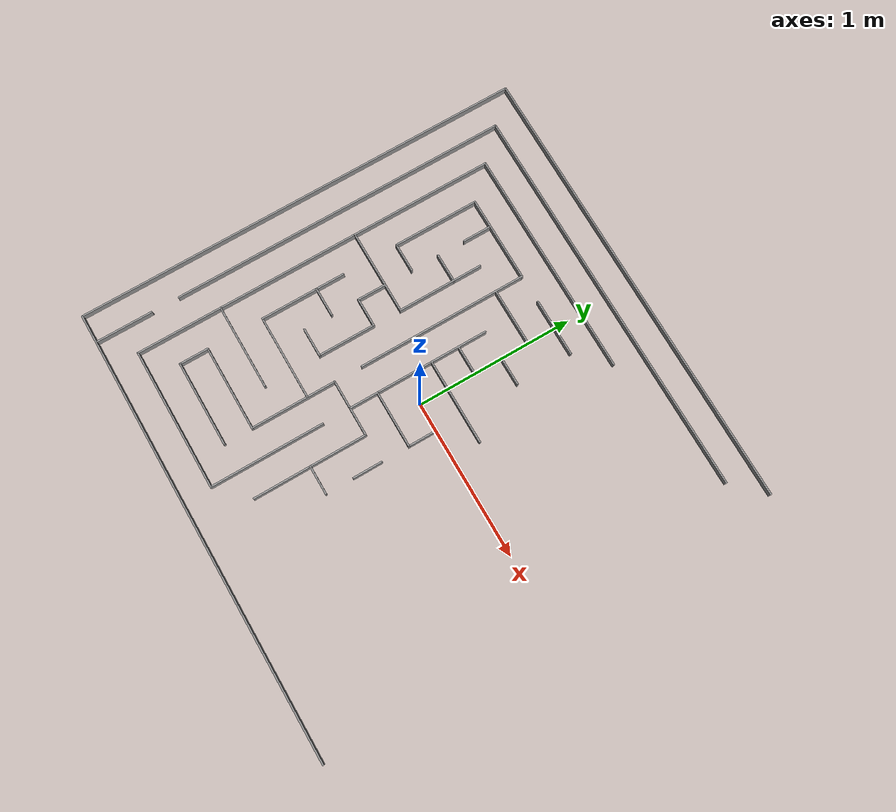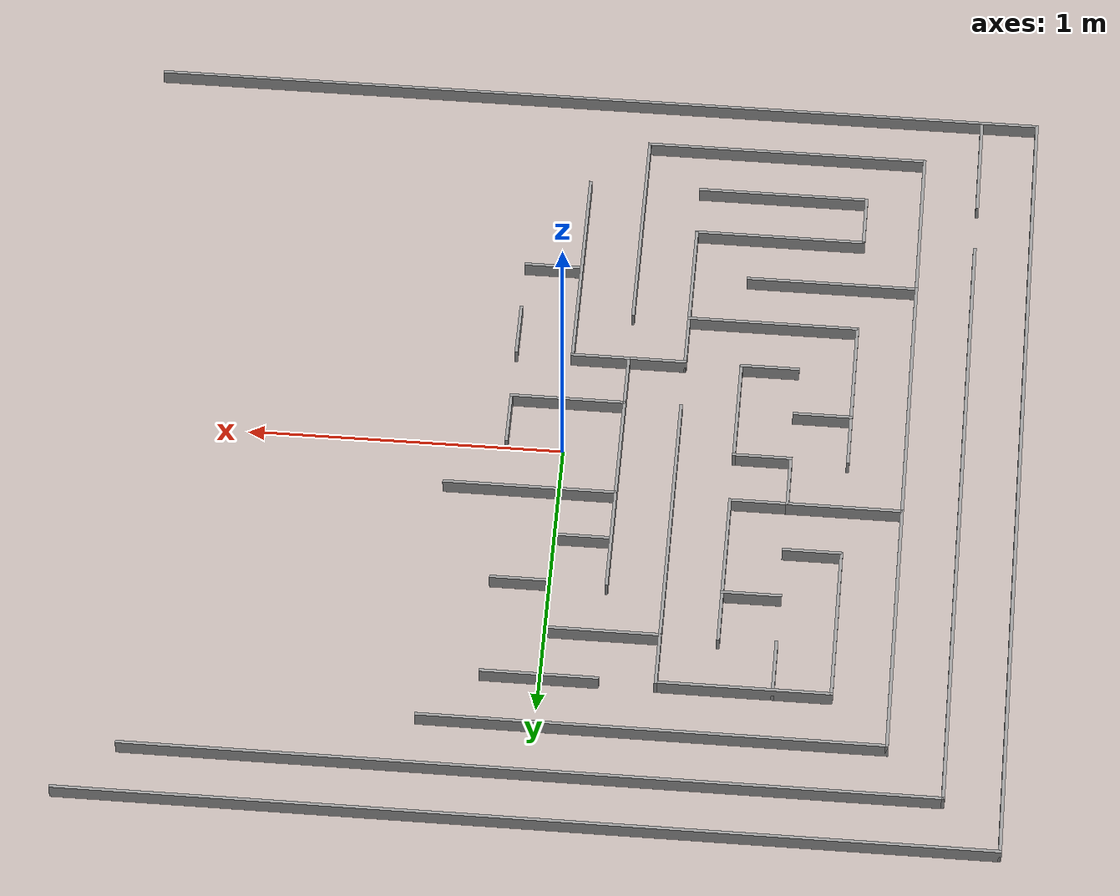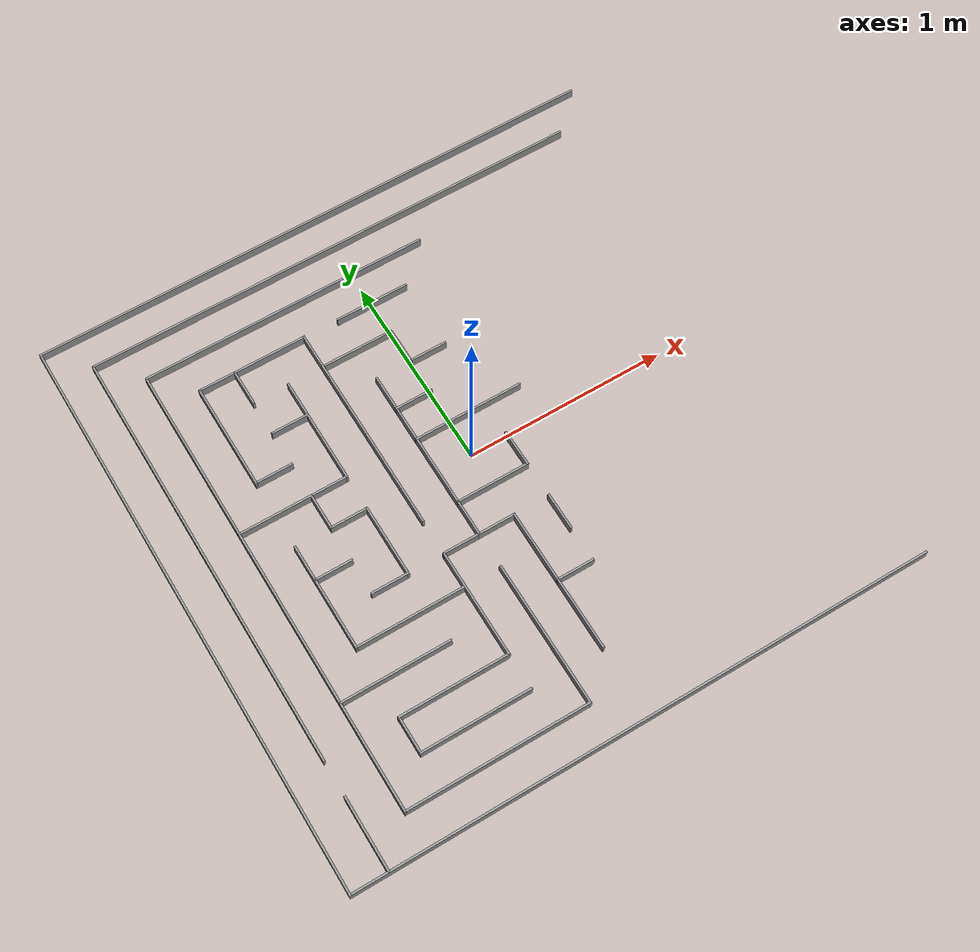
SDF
<sdf version="1.7">
 <model name="Maze1">
  <pose>-0.527918 0 0 0 -0 0</pose>
  <link name="Wall_0">
   <collision name="Wall_0_Collision">
    <geometry><box><size>2.89 0.01 0.05</size></box></geometry>
    <pose>0 0 0.025 0 -0 0</pose>
   </collision>
   <visual name="Wall_0_Visual">
    <pose>0 0 0.025 0 -0 0</pose>
    <geometry><box><size>2.89 0.01 0.05</size></box></geometry>
    <material>
     <script><uri>file://media/materials/scripts/gazebo.material</uri><name>Gazebo/Grey</name></script>
     <ambient>1 1 1 1</ambient>
    </material>
    <meta><layer>0</layer></meta>
   </visual>
   <pose>0.527918 -1.44 0 0 -0 0</pose>
  </link>
  <link name="Wall_11">
   <collision name="Wall_11_Collision">
    <geometry><box><size>0.19 0.01 0.05</size></box></geometry>
    <pose>0 0 0.025 0 -0 0</pose>
   </collision>
   <visual name="Wall_11_Visual">
    <pose>0 0 0.025 0 -0 0</pose>
    <geometry><box><size>0.19 0.01 0.05</size></box></geometry>
    <material>
     <script><uri>file://media/materials/scripts/gazebo.material</uri><name>Gazebo/Grey</name></script>
     <ambient>1 1 1 1</ambient>
    </material>
    <meta><layer>0</layer></meta>
   </visual>
   <pose>0.707918 -0.09 0 0 -0 -1.5708</pose>
  </link>
  <link name="Wall_118">
   <collision name="Wall_118_Collision">
    <geometry><box><size>0.19 0.01 0.05</size></box></geometry>
    <pose>0 0 0.025 0 -0 0</pose>
   </collision>
   <visual name="Wall_118_Visual">
    <pose>0 0 0.025 0 -0 0</pose>
    <geometry><box><size>0.19 0.01 0.05</size></box></geometry>
    <material>
     <script><uri>file://media/materials/scripts/gazebo.material</uri><name>Gazebo/Grey</name></script>
     <ambient>1 1 1 1</ambient>
    </material>
    <meta><layer>0</layer></meta>
   </visual>
   <pose>0.707918 -0.45 0 0 -0 1.5708</pose>
  </link>
  <link name="Wall_12">
   <collision name="Wall_12_Collision">
    <geometry><box><size>0.37 0.01 0.05</size></box></geometry>
    <pose>0 0 0.025 0 -0 0</pose>
   </collision>
   <visual name="Wall_12_Visual">
    <pose>0 0 0.025 0 -0 0</pose>
    <geometry><box><size>0.37 0.01 0.05</size></box></geometry>
    <material>
     <script><uri>file://media/materials/scripts/gazebo.material</uri><name>Gazebo/Grey</name></script>
     <ambient>1 1 1 1</ambient>
    </material>
    <meta><layer>0</layer></meta>
   </visual>
   <pose>0.527918 -0.18 0 0 -0 3.14159</pose>
  </link>
  <link name="Wall_120">
   <collision name="Wall_120_Collision">
    <geometry><box><size>0.19 0.01 0.05</size></box></geometry>
    <pose>0 0 0.025 0 -0 0</pose>
   </collision>
   <visual name="Wall_120_Visual">
    <pose>0 0 0.025 0 -0 0</pose>
    <geometry><box><size>0.19 0.01 0.05</size></box></geometry>
    <material>
     <script><uri>file://media/materials/scripts/gazebo.material</uri><name>Gazebo/Grey</name></script>
     <ambient>1 1 1 1</ambient>
    </material>
    <meta><layer>0</layer></meta>
   </visual>
   <pose>0.617918 -0.72 0 0 -0 0</pose>
  </link>
  <link name="Wall_128">
   <collision name="Wall_128_Collision">
    <geometry><box><size>0.19 0.01 0.05</size></box></geometry>
    <pose>0 0 0.025 0 -0 0</pose>
   </collision>
   <visual name="Wall_128_Visual">
    <pose>0 0 0.025 0 -0 0</pose>
    <geometry><box><size>0.19 0.01 0.05</size></box></geometry>
    <material>
     <script><uri>file://media/materials/scripts/gazebo.material</uri><name>Gazebo/Grey</name></script>
     <ambient>1 1 1 1</ambient>
    </material>
    <meta><layer>0</layer></meta>
   </visual>
   <pose>0.257918 -0.36 0 0 -0 3.14159</pose>
  </link>
  <link name="Wall_129">
   <collision name="Wall_129_Collision">
    <geometry><box><size>0.55 0.01 0.05</size></box></geometry>
    <pose>0 0 0.025 0 -0 0</pose>
   </collision>
   <visual name="Wall_129_Visual">
    <pose>0 0 0.025 0 -0 0</pose>
    <geometry><box><size>0.55 0.01 0.05</size></box></geometry>
    <material>
     <script><uri>file://media/materials/scripts/gazebo.material</uri><name>Gazebo/Grey</name></script>
     <ambient>1 1 1 1</ambient>
    </material>
    <meta><layer>0</layer></meta>
   </visual>
   <pose>0.167918 -0.63 0 0 -0 -1.5708</pose>
  </link>
  <link name="Wall_13">
   <collision name="Wall_13_Collision">
    <geometry><box><size>0.37 0.01 0.05</size></box></geometry>
    <pose>0 0 0.025 0 -0 0</pose>
   </collision>
   <visual name="Wall_13_Visual">
    <pose>0 0 0.025 0 -0 0</pose>
    <geometry><box><size>0.37 0.01 0.05</size></box></geometry>
    <material>
     <script><uri>file://media/materials/scripts/gazebo.material</uri><name>Gazebo/Grey</name></script>
     <ambient>1 1 1 1</ambient>
    </material>
    <meta><layer>0</layer></meta>
   </visual>
   <pose>0.347918 0 0 0 -0 1.5708</pose>
  </link>
  <link name="Wall_130">
   <collision name="Wall_130_Collision">
    <geometry><box><size>0.55 0.01 0.05</size></box></geometry>
    <pose>0 0 0.025 0 -0 0</pose>
   </collision>
   <visual name="Wall_130_Visual">
    <pose>0 0 0.025 0 -0 0</pose>
    <geometry><box><size>0.55 0.01 0.05</size></box></geometry>
    <material>
     <script><uri>file://media/materials/scripts/gazebo.material</uri><name>Gazebo/Grey</name></script>
     <ambient>1 1 1 1</ambient>
    </material>
    <meta><layer>0</layer></meta>
   </visual>
   <pose>-0.102082 -0.9 0 0 -0 3.14159</pose>
  </link>
  <link name="Wall_131">
   <collision name="Wall_131_Collision">
    <geometry><box><size>0.189303 0.01 0.05</size></box></geometry>
    <pose>0 0 0.025 0 -0 0</pose>
   </collision>
   <visual name="Wall_131_Visual">
    <pose>0 0 0.025 0 -0 0</pose>
    <geometry><box><size>0.189303 0.01 0.05</size></box></geometry>
    <material>
     <script><uri>file://media/materials/scripts/gazebo.material</uri><name>Gazebo/Grey</name></script>
     <ambient>1 1 1 1</ambient>
    </material>
    <meta><layer>0</layer></meta>
   </visual>
   <pose>-0.372082 -0.99 0 0 -0 -1.5708</pose>
  </link>
  <link name="Wall_132">
   <collision name="Wall_132_Collision">
    <geometry><box><size>0.55 0.01 0.05</size></box></geometry>
    <pose>0 0 0.025 0 -0 0</pose>
   </collision>
   <visual name="Wall_132_Visual">
    <pose>0 0 0.025 0 -0 0</pose>
    <geometry><box><size>0.55 0.01 0.05</size></box></geometry>
    <material>
     <script><uri>file://media/materials/scripts/gazebo.material</uri><name>Gazebo/Grey</name></script>
     <ambient>1 1 1 1</ambient>
    </material>
    <meta><layer>0</layer></meta>
   </visual>
   <pose>-0.102082 -1.08 0 0 -0 0</pose>
  </link>
  <link name="Wall_14">
   <collision name="Wall_14_Collision">
    <geometry><box><size>0.55 0.01 0.05</size></box></geometry>
    <pose>0 0 0.025 0 -0 0</pose>
   </collision>
   <visual name="Wall_14_Visual">
    <pose>0 0 0.025 0 -0 0</pose>
    <geometry><box><size>0.55 0.01 0.05</size></box></geometry>
    <material>
     <script><uri>file://media/materials/scripts/gazebo.material</uri><name>Gazebo/Grey</name></script>
     <ambient>1 1 1 1</ambient>
    </material>
    <meta><layer>0</layer></meta>
   </visual>
   <pose>0.617918 0.18 0 0 -0 0</pose>
  </link>
  <link name="Wall_147">
   <collision name="Wall_147_Collision">
    <geometry><box><size>0.55 0.01 0.05</size></box></geometry>
    <pose>0 0 0.025 0 -0 0</pose>
   </collision>
   <visual name="Wall_147_Visual">
    <pose>0 0 0.025 0 -0 0</pose>
    <geometry><box><size>0.55 0.01 0.05</size></box></geometry>
    <material>
     <script><uri>file://media/materials/scripts/gazebo.material</uri><name>Gazebo/Grey</name></script>
     <ambient>1 1 1 1</ambient>
    </material>
    <meta><layer>0</layer></meta>
   </visual>
   <pose>-0.102082 -0.54 0 0 -0 3.14159</pose>
  </link>
  <link name="Wall_148">
   <collision name="Wall_148_Collision">
    <geometry><box><size>0.55 0.01 0.05</size></box></geometry>
    <pose>0 0 0.025 0 -0 0</pose>
   </collision>
   <visual name="Wall_148_Visual">
    <pose>0 0 0.025 0 -0 0</pose>
    <geometry><box><size>0.55 0.01 0.05</size></box></geometry>
    <material>
     <script><uri>file://media/materials/scripts/gazebo.material</uri><name>Gazebo/Grey</name></script>
     <ambient>1 1 1 1</ambient>
    </material>
    <meta><layer>0</layer></meta>
   </visual>
   <pose>-0.372082 -0.27 0 0 -0 1.5708</pose>
  </link>
  <link name="Wall_151">
   <collision name="Wall_151_Collision">
    <geometry><box><size>0.19 0.01 0.05</size></box></geometry>
    <pose>0 0 0.025 0 -0 0</pose>
   </collision>
   <visual name="Wall_151_Visual">
    <pose>0 0 0.025 0 -0 0</pose>
    <geometry><box><size>0.19 0.01 0.05</size></box></geometry>
    <material>
     <script><uri>file://media/materials/scripts/gazebo.material</uri><name>Gazebo/Grey</name></script>
     <ambient>1 1 1 1</ambient>
    </material>
    <meta><layer>0</layer></meta>
   </visual>
   <pose>-0.282082 -0.18 0 0 -0 0</pose>
  </link>
  <link name="Wall_158">
   <collision name="Wall_158_Collision">
    <geometry><box><size>0.37 0.01 0.05</size></box></geometry>
    <pose>0 0 0.025 0 -0 0</pose>
   </collision>
   <visual name="Wall_158_Visual">
    <pose>0 0 0.025 0 -0 0</pose>
    <geometry><box><size>0.37 0.01 0.05</size></box></geometry>
    <material>
     <script><uri>file://media/materials/scripts/gazebo.material</uri><name>Gazebo/Grey</name></script>
     <ambient>1 1 1 1</ambient>
    </material>
    <meta><layer>0</layer></meta>
   </visual>
   <pose>0.347918 0.36 0 0 -0 1.5708</pose>
  </link>
  <link name="Wall_160">
   <collision name="Wall_160_Collision">
    <geometry><box><size>0.19 0.01 0.05</size></box></geometry>
    <pose>0 0 0.025 0 -0 0</pose>
   </collision>
   <visual name="Wall_160_Visual">
    <pose>0 0 0.025 0 -0 0</pose>
    <geometry><box><size>0.19 0.01 0.05</size></box></geometry>
    <material>
     <script><uri>file://media/materials/scripts/gazebo.material</uri><name>Gazebo/Grey</name></script>
     <ambient>1 1 1 1</ambient>
    </material>
    <meta><layer>0</layer></meta>
   </visual>
   <pose>0.437918 0.36 0 0 -0 0</pose>
  </link>
  <link name="Wall_162">
   <collision name="Wall_162_Collision">
    <geometry><box><size>0.91 0.01 0.05</size></box></geometry>
    <pose>0 0 0.025 0 -0 0</pose>
   </collision>
   <visual name="Wall_162_Visual">
    <pose>0 0 0.025 0 -0 0</pose>
    <geometry><box><size>0.91 0.01 0.05</size></box></geometry>
    <material>
     <script><uri>file://media/materials/scripts/gazebo.material</uri><name>Gazebo/Grey</name></script>
     <ambient>1 1 1 1</ambient>
    </material>
    <meta><layer>0</layer></meta>
   </visual>
   <pose>-0.552082 -0.27 0 0 -0 1.5708</pose>
  </link>
  <link name="Wall_163">
   <collision name="Wall_163_Collision">
    <geometry><box><size>0.37 0.01 0.05</size></box></geometry>
    <pose>0 0 0.025 0 -0 0</pose>
   </collision>
   <visual name="Wall_163_Visual">
    <pose>0 0 0.025 0 -0 0</pose>
    <geometry><box><size>0.37 0.01 0.05</size></box></geometry>
    <material>
     <script><uri>file://media/materials/scripts/gazebo.material</uri><name>Gazebo/Grey</name></script>
     <ambient>1 1 1 1</ambient>
    </material>
    <meta><layer>0</layer></meta>
   </visual>
   <pose>-0.372082 0.18 0 0 -0 0</pose>
  </link>
  <link name="Wall_164">
   <collision name="Wall_164_Collision">
    <geometry><box><size>0.19 0.01 0.05</size></box></geometry>
    <pose>0 0 0.025 0 -0 0</pose>
   </collision>
   <visual name="Wall_164_Visual">
    <pose>0 0 0.025 0 -0 0</pose>
    <geometry><box><size>0.19 0.01 0.05</size></box></geometry>
    <material>
     <script><uri>file://media/materials/scripts/gazebo.material</uri><name>Gazebo/Grey</name></script>
     <ambient>1 1 1 1</ambient>
    </material>
    <meta><layer>0</layer></meta>
   </visual>
   <pose>-0.192082 0.09 0 0 -0 -1.5708</pose>
  </link>
  <link name="Wall_165">
   <collision name="Wall_165_Collision">
    <geometry><box><size>0.19 0.01 0.05</size></box></geometry>
    <pose>0 0 0.025 0 -0 0</pose>
   </collision>
   <visual name="Wall_165_Visual">
    <pose>0 0 0.025 0 -0 0</pose>
    <geometry><box><size>0.19 0.01 0.05</size></box></geometry>
    <material>
     <script><uri>file://media/materials/scripts/gazebo.material</uri><name>Gazebo/Grey</name></script>
     <ambient>1 1 1 1</ambient>
    </material>
    <meta><layer>0</layer></meta>
   </visual>
   <pose>-0.102082 0 0 0 -0 0</pose>
  </link>
  <link name="Wall_169">
   <collision name="Wall_169_Collision">
    <geometry><box><size>0.91 0.01 0.05</size></box></geometry>
    <pose>0 0 0.025 0 -0 0</pose>
   </collision>
   <visual name="Wall_169_Visual">
    <pose>0 0 0.025 0 -0 0</pose>
    <geometry><box><size>0.91 0.01 0.05</size></box></geometry>
    <material>
     <script><uri>file://media/materials/scripts/gazebo.material</uri><name>Gazebo/Grey</name></script>
     <ambient>1 1 1 1</ambient>
    </material>
    <meta><layer>0</layer></meta>
   </visual>
   <pose>-0.552082 0.63 0 0 -0 1.5708</pose>
  </link>
  <link name="Wall_170">
   <collision name="Wall_170_Collision">
    <geometry><box><size>1.45 0.01 0.05</size></box></geometry>
    <pose>0 0 0.025 0 -0 0</pose>
   </collision>
   <visual name="Wall_170_Visual">
    <pose>0 0 0.025 0 -0 0</pose>
    <geometry><box><size>1.45 0.01 0.05</size></box></geometry>
    <material>
     <script><uri>file://media/materials/scripts/gazebo.material</uri><name>Gazebo/Grey</name></script>
     <ambient>1 1 1 1</ambient>
    </material>
    <meta><layer>0</layer></meta>
   </visual>
   <pose>0.167918 1.08 0 0 -0 0</pose>
  </link>
  <link name="Wall_179">
   <collision name="Wall_179_Collision">
    <geometry><box><size>0.370044 0.01 0.05</size></box></geometry>
    <pose>0 0 0.025 0 -0 0</pose>
   </collision>
   <visual name="Wall_179_Visual">
    <pose>0 0 0.025 0 -0 0</pose>
    <geometry><box><size>0.370044 0.01 0.05</size></box></geometry>
    <material>
     <script><uri>file://media/materials/scripts/gazebo.material</uri><name>Gazebo/Grey</name></script>
     <ambient>1 1 1 1</ambient>
    </material>
    <meta><layer>0</layer></meta>
   </visual>
   <pose>-0.012082 -0.18 0 0 -0 -1.5708</pose>
  </link>
  <link name="Wall_180">
   <collision name="Wall_180_Collision">
    <geometry><box><size>0.19 0.01 0.05</size></box></geometry>
    <pose>0 0 0.025 0 -0 0</pose>
   </collision>
   <visual name="Wall_180_Visual">
    <pose>0 0 0.025 0 -0 0</pose>
    <geometry><box><size>0.19 0.01 0.05</size></box></geometry>
    <material>
     <script><uri>file://media/materials/scripts/gazebo.material</uri><name>Gazebo/Grey</name></script>
     <ambient>1 1 1 1</ambient>
    </material>
    <meta><layer>0</layer></meta>
   </visual>
   <pose>-0.102082 -0.36 0 0 -0 3.14159</pose>
  </link>
  <link name="Wall_186">
   <collision name="Wall_186_Collision">
    <geometry><box><size>0.19 0.01 0.05</size></box></geometry>
    <pose>0 0 0.025 0 -0 0</pose>
   </collision>
   <visual name="Wall_186_Visual">
    <pose>0 0 0.025 0 -0 0</pose>
    <geometry><box><size>0.19 0.01 0.05</size></box></geometry>
    <material>
     <script><uri>file://media/materials/scripts/gazebo.material</uri><name>Gazebo/Grey</name></script>
     <ambient>1 1 1 1</ambient>
    </material>
    <meta><layer>0</layer></meta>
   </visual>
   <pose>-0.102082 0.18 0 0 -0 0</pose>
  </link>
  <link name="Wall_187">
   <collision name="Wall_187_Collision">
    <geometry><box><size>0.55 0.01 0.05</size></box></geometry>
    <pose>0 0 0.025 0 -0 0</pose>
   </collision>
   <visual name="Wall_187_Visual">
    <pose>0 0 0.025 0 -0 0</pose>
    <geometry><box><size>0.55 0.01 0.05</size></box></geometry>
    <material>
     <script><uri>file://media/materials/scripts/gazebo.material</uri><name>Gazebo/Grey</name></script>
     <ambient>1 1 1 1</ambient>
    </material>
    <meta><layer>0</layer></meta>
   </visual>
   <pose>-0.012082 0.45 0 0 -0 1.5708</pose>
  </link>
  <link name="Wall_190">
   <collision name="Wall_190_Collision">
    <geometry><box><size>0.19 0.01 0.05</size></box></geometry>
    <pose>0 0 0.025 0 -0 0</pose>
   </collision>
   <visual name="Wall_190_Visual">
    <pose>0 0 0.025 0 -0 0</pose>
    <geometry><box><size>0.19 0.01 0.05</size></box></geometry>
    <material>
     <script><uri>file://media/materials/scripts/gazebo.material</uri><name>Gazebo/Grey</name></script>
     <ambient>1 1 1 1</ambient>
    </material>
    <meta><layer>0</layer></meta>
   </visual>
   <pose>-0.102082 0.54 0 0 -0 3.14159</pose>
  </link>
  <link name="Wall_192">
   <collision name="Wall_192_Collision">
    <geometry><box><size>1.09 0.01 0.05</size></box></geometry>
    <pose>0 0 0.025 0 -0 0</pose>
   </collision>
   <visual name="Wall_192_Visual">
    <pose>0 0 0.025 0 -0 0</pose>
    <geometry><box><size>1.09 0.01 0.05</size></box></geometry>
    <material>
     <script><uri>file://media/materials/scripts/gazebo.material</uri><name>Gazebo/Grey</name></script>
     <ambient>1 1 1 1</ambient>
    </material>
    <meta><layer>0</layer></meta>
   </visual>
   <pose>0.167918 0.36 0 0 -0 1.5708</pose>
  </link>
  <link name="Wall_193">
   <collision name="Wall_193_Collision">
    <geometry><box><size>0.55 0.01 0.05</size></box></geometry>
    <pose>0 0 0.025 0 -0 0</pose>
   </collision>
   <visual name="Wall_193_Visual">
    <pose>0 0 0.025 0 -0 0</pose>
    <geometry><box><size>0.55 0.01 0.05</size></box></geometry>
    <material>
     <script><uri>file://media/materials/scripts/gazebo.material</uri><name>Gazebo/Grey</name></script>
     <ambient>1 1 1 1</ambient>
    </material>
    <meta><layer>0</layer></meta>
   </visual>
   <pose>-0.102082 0.9 0 0 -0 3.14159</pose>
  </link>
  <link name="Wall_194">
   <collision name="Wall_194_Collision">
    <geometry><box><size>0.55 0.01 0.05</size></box></geometry>
    <pose>0 0 0.025 0 -0 0</pose>
   </collision>
   <visual name="Wall_194_Visual">
    <pose>0 0 0.025 0 -0 0</pose>
    <geometry><box><size>0.55 0.01 0.05</size></box></geometry>
    <material>
     <script><uri>file://media/materials/scripts/gazebo.material</uri><name>Gazebo/Grey</name></script>
     <ambient>1 1 1 1</ambient>
    </material>
    <meta><layer>0</layer></meta>
   </visual>
   <pose>-0.372082 0.63 0 0 -0 -1.5708</pose>
  </link>
  <link name="Wall_195">
   <collision name="Wall_195_Collision">
    <geometry><box><size>0.19 0.01 0.05</size></box></geometry>
    <pose>0 0 0.025 0 -0 0</pose>
   </collision>
   <visual name="Wall_195_Visual">
    <pose>0 0 0.025 0 -0 0</pose>
    <geometry><box><size>0.19 0.01 0.05</size></box></geometry>
    <material>
     <script><uri>file://media/materials/scripts/gazebo.material</uri><name>Gazebo/Grey</name></script>
     <ambient>1 1 1 1</ambient>
    </material>
    <meta><layer>0</layer></meta>
   </visual>
   <pose>-0.282082 0.36 0 0 -0 0</pose>
  </link>
  <link name="Wall_197">
   <collision name="Wall_197_Collision">
    <geometry><box><size>0.19 0.01 0.05</size></box></geometry>
    <pose>0 0 0.025 0 -0 0</pose>
   </collision>
   <visual name="Wall_197_Visual">
    <pose>0 0 0.025 0 -0 0</pose>
    <geometry><box><size>0.19 0.01 0.05</size></box></geometry>
    <material>
     <script><uri>file://media/materials/scripts/gazebo.material</uri><name>Gazebo/Grey</name></script>
     <ambient>1 1 1 1</ambient>
    </material>
    <meta><layer>0</layer></meta>
   </visual>
   <pose>-0.192082 0.81 0 0 -0 -1.5708</pose>
  </link>
  <link name="Wall_206">
   <collision name="Wall_206_Collision">
    <geometry><box><size>0.37 0.01 0.05</size></box></geometry>
    <pose>0 0 0.025 0 -0 0</pose>
   </collision>
   <visual name="Wall_206_Visual">
    <pose>0 0 0.025 0 -0 0</pose>
    <geometry><box><size>0.37 0.01 0.05</size></box></geometry>
    <material>
     <script><uri>file://media/materials/scripts/gazebo.material</uri><name>Gazebo/Grey</name></script>
     <ambient>1 1 1 1</ambient>
    </material>
    <meta><layer>0</layer></meta>
   </visual>
   <pose>0.347918 0.72 0 0 -0 0</pose>
  </link>
  <link name="Wall_207">
   <collision name="Wall_207_Collision">
    <geometry><box><size>0.19 0.01 0.05</size></box></geometry>
    <pose>0 0 0.025 0 -0 0</pose>
   </collision>
   <visual name="Wall_207_Visual">
    <pose>0 0 0.025 0 -0 0</pose>
    <geometry><box><size>0.19 0.01 0.05</size></box></geometry>
    <material>
     <script><uri>file://media/materials/scripts/gazebo.material</uri><name>Gazebo/Grey</name></script>
     <ambient>1 1 1 1</ambient>
    </material>
    <meta><layer>0</layer></meta>
   </visual>
   <pose>0.527918 0.63 0 0 -0 -1.5708</pose>
  </link>
  <link name="Wall_208">
   <collision name="Wall_208_Collision">
    <geometry><box><size>0.19 0.01 0.05</size></box></geometry>
    <pose>0 0 0.025 0 -0 0</pose>
   </collision>
   <visual name="Wall_208_Visual">
    <pose>0 0 0.025 0 -0 0</pose>
    <geometry><box><size>0.19 0.01 0.05</size></box></geometry>
    <material>
     <script><uri>file://media/materials/scripts/gazebo.material</uri><name>Gazebo/Grey</name></script>
     <ambient>1 1 1 1</ambient>
    </material>
    <meta><layer>0</layer></meta>
   </visual>
   <pose>0.617918 0.54 0 0 -0 0</pose>
  </link>
  <link name="Wall_21">
   <collision name="Wall_21_Collision">
    <geometry><box><size>0.37 0.01 0.05</size></box></geometry>
    <pose>0 0 0.025 0 -0 0</pose>
   </collision>
   <visual name="Wall_21_Visual">
    <pose>0 0 0.025 0 -0 0</pose>
    <geometry><box><size>0.37 0.01 0.05</size></box></geometry>
    <material>
     <script><uri>file://media/materials/scripts/gazebo.material</uri><name>Gazebo/Grey</name></script>
     <ambient>1 1 1 1</ambient>
    </material>
    <meta><layer>0</layer></meta>
   </visual>
   <pose>-0.732082 -1.26 0 0 -0 1.5708</pose>
  </link>
  <link name="Wall_222">
   <collision name="Wall_222_Collision">
    <geometry><box><size>0.37 0.01 0.05</size></box></geometry>
    <pose>0 0 0.025 0 -0 0</pose>
   </collision>
   <visual name="Wall_222_Visual">
    <pose>0 0 0.025 0 -0 0</pose>
    <geometry><box><size>0.37 0.01 0.05</size></box></geometry>
    <material>
     <script><uri>file://media/materials/scripts/gazebo.material</uri><name>Gazebo/Grey</name></script>
     <ambient>1 1 1 1</ambient>
    </material>
    <meta><layer>0</layer></meta>
   </visual>
   <pose>0.527918 0.9 0 0 -0 3.14159</pose>
  </link>
  <link name="Wall_23">
   <collision name="Wall_23_Collision">
    <geometry><box><size>2.17 0.01 0.05</size></box></geometry>
    <pose>0 0 0.025 0 -0 0</pose>
   </collision>
   <visual name="Wall_23_Visual">
    <pose>0 0 0.025 0 -0 0</pose>
    <geometry><box><size>2.17 0.01 0.05</size></box></geometry>
    <material>
     <script><uri>file://media/materials/scripts/gazebo.material</uri><name>Gazebo/Grey</name></script>
     <ambient>1 1 1 1</ambient>
    </material>
    <meta><layer>0</layer></meta>
   </visual>
   <pose>-0.732082 0.18 0 0 -0 1.5708</pose>
  </link>
  <link name="Wall_24">
   <collision name="Wall_24_Collision">
    <geometry><box><size>2.53 0.01 0.05</size></box></geometry>
    <pose>0 0 0.025 0 -0 0</pose>
   </collision>
   <visual name="Wall_24_Visual">
    <pose>0 0 0.025 0 -0 0</pose>
    <geometry><box><size>2.53 0.01 0.05</size></box></geometry>
    <material>
     <script><uri>file://media/materials/scripts/gazebo.material</uri><name>Gazebo/Grey</name></script>
     <ambient>1 1 1 1</ambient>
    </material>
    <meta><layer>0</layer></meta>
   </visual>
   <pose>0.527918 1.26 0 0 -0 0</pose>
  </link>
  <link name="Wall_4">
   <collision name="Wall_4_Collision">
    <geometry><box><size>2.89 0.01 0.05</size></box></geometry>
    <pose>0 0 0.025 0 -0 0</pose>
   </collision>
   <visual name="Wall_4_Visual">
    <pose>0 0 0.025 0 -0 0</pose>
    <geometry><box><size>2.89 0.01 0.05</size></box></geometry>
    <material>
     <script><uri>file://media/materials/scripts/gazebo.material</uri><name>Gazebo/Grey</name></script>
     <ambient>1 1 1 1</ambient>
    </material>
    <meta><layer>0</layer></meta>
   </visual>
   <pose>-0.912082 0 0 0 -0 1.5708</pose>
  </link>
  <link name="Wall_43">
   <collision name="Wall_43_Collision">
    <geometry><box><size>0.55 0.01 0.05</size></box></geometry>
    <pose>0 0 0.025 0 -0 0</pose>
   </collision>
   <visual name="Wall_43_Visual">
    <pose>0 0 0.025 0 -0 0</pose>
    <geometry><box><size>0.55 0.01 0.05</size></box></geometry>
    <material>
     <script><uri>file://media/materials/scripts/gazebo.material</uri><name>Gazebo/Grey</name></script>
     <ambient>1 1 1 1</ambient>
    </material>
    <meta><layer>0</layer></meta>
   </visual>
   <pose>-0.282082 -0.72 0 0 -0 3.14159</pose>
  </link>
  <link name="Wall_44">
   <collision name="Wall_44_Collision">
    <geometry><box><size>0.55 0.01 0.05</size></box></geometry>
    <pose>0 0 0.025 0 -0 0</pose>
   </collision>
   <visual name="Wall_44_Visual">
    <pose>0 0 0.025 0 -0 0</pose>
    <geometry><box><size>0.55 0.01 0.05</size></box></geometry>
    <material>
     <script><uri>file://media/materials/scripts/gazebo.material</uri><name>Gazebo/Grey</name></script>
     <ambient>1 1 1 1</ambient>
    </material>
    <meta><layer>0</layer></meta>
   </visual>
   <pose>-0.552082 -0.99 0 0 -0 -1.5708</pose>
  </link>
  <link name="Wall_45">
   <collision name="Wall_45_Collision">
    <geometry><box><size>0.91 0.01 0.05</size></box></geometry>
    <pose>0 0 0.025 0 -0 0</pose>
   </collision>
   <visual name="Wall_45_Visual">
    <pose>0 0 0.025 0 -0 0</pose>
    <geometry><box><size>0.91 0.01 0.05</size></box></geometry>
    <material>
     <script><uri>file://media/materials/scripts/gazebo.material</uri><name>Gazebo/Grey</name></script>
     <ambient>1 1 1 1</ambient>
    </material>
    <meta><layer>0</layer></meta>
   </visual>
   <pose>-0.102082 -1.26 0 0 -0 0</pose>
  </link>
  <link name="Wall_5">
   <collision name="Wall_5_Collision">
    <geometry><box><size>2.89 0.01 0.05</size></box></geometry>
    <pose>0 0 0.025 0 -0 0</pose>
   </collision>
   <visual name="Wall_5_Visual">
    <pose>0 0 0.025 0 -0 0</pose>
    <geometry><box><size>2.89 0.01 0.05</size></box></geometry>
    <material>
     <script><uri>file://media/materials/scripts/gazebo.material</uri><name>Gazebo/Grey</name></script>
     <ambient>1 1 1 1</ambient>
    </material>
    <meta><layer>0</layer></meta>
   </visual>
   <pose>0.527918 1.44 0 0 -0 0</pose>
  </link>
  <link name="Wall_50">
   <collision name="Wall_50_Collision">
    <geometry><box><size>0.73 0.01 0.05</size></box></geometry>
    <pose>0 0 0.025 0 -0 0</pose>
   </collision>
   <visual name="Wall_50_Visual">
    <pose>0 0 0.025 0 -0 0</pose>
    <geometry><box><size>0.73 0.01 0.05</size></box></geometry>
    <material>
     <script><uri>file://media/materials/scripts/gazebo.material</uri><name>Gazebo/Grey</name></script>
     <ambient>1 1 1 1</ambient>
    </material>
    <meta><layer>0</layer></meta>
   </visual>
   <pose>0.347918 -0.9 0 0 -0 1.5708</pose>
  </link>
  <link name="Wall_60">
   <collision name="Wall_60_Collision">
    <geometry><box><size>0.189408 0.01 0.05</size></box></geometry>
    <pose>0 0 0.025 0 -0 0</pose>
   </collision>
   <visual name="Wall_60_Visual">
    <pose>0 0 0.025 0 -0 0</pose>
    <geometry><box><size>0.189408 0.01 0.05</size></box></geometry>
    <material>
     <script><uri>file://media/materials/scripts/gazebo.material</uri><name>Gazebo/Grey</name></script>
     <ambient>1 1 1 1</ambient>
    </material>
    <meta><layer>0</layer></meta>
   </visual>
   <pose>0.347918 -0.27 0 0 -0 -1.5708</pose>
  </link>
  <link name="Wall_61">
   <collision name="Wall_61_Collision">
    <geometry><box><size>0.19 0.01 0.05</size></box></geometry>
    <pose>0 0 0.025 0 -0 0</pose>
   </collision>
   <visual name="Wall_61_Visual">
    <pose>0 0 0.025 0 -0 0</pose>
    <geometry><box><size>0.19 0.01 0.05</size></box></geometry>
    <material>
     <script><uri>file://media/materials/scripts/gazebo.material</uri><name>Gazebo/Grey</name></script>
     <ambient>1 1 1 1</ambient>
    </material>
    <meta><layer>0</layer></meta>
   </visual>
   <pose>0.437918 -0.36 0 0 -0 0</pose>
  </link>
  <link name="Wall_62">
   <collision name="Wall_62_Collision">
    <geometry><box><size>0.73 0.01 0.05</size></box></geometry>
    <pose>0 0 0.025 0 -0 0</pose>
   </collision>
   <visual name="Wall_62_Visual">
    <pose>0 0 0.025 0 -0 0</pose>
    <geometry><box><size>0.73 0.01 0.05</size></box></geometry>
    <material>
     <script><uri>file://media/materials/scripts/gazebo.material</uri><name>Gazebo/Grey</name></script>
     <ambient>1 1 1 1</ambient>
    </material>
    <meta><layer>0</layer></meta>
   </visual>
   <pose>0.527918 -0.72 0 0 -0 -1.5708</pose>
  </link>
  <link name="Wall_9">
   <collision name="Wall_9_Collision">
    <geometry><box><size>0.01 0.01 0.05</size></box></geometry>
    <pose>0 0 0.025 0 -0 0</pose>
   </collision>
   <visual name="Wall_9_Visual">
    <pose>0 0 0.025 0 -0 0</pose>
    <geometry><box><size>0.01 0.01 0.05</size></box></geometry>
    <material>
     <script><uri>file://media/materials/scripts/gazebo.material</uri><name>Gazebo/Grey</name></script>
     <ambient>0.996078 0.47451 0.0196078 1</ambient>
    </material>
    <meta><layer>0</layer></meta>
   </visual>
   <pose>0.527918 0 0 0 -0 0</pose>
  </link>
  <static>1</static>
 </model>
</sdf>
